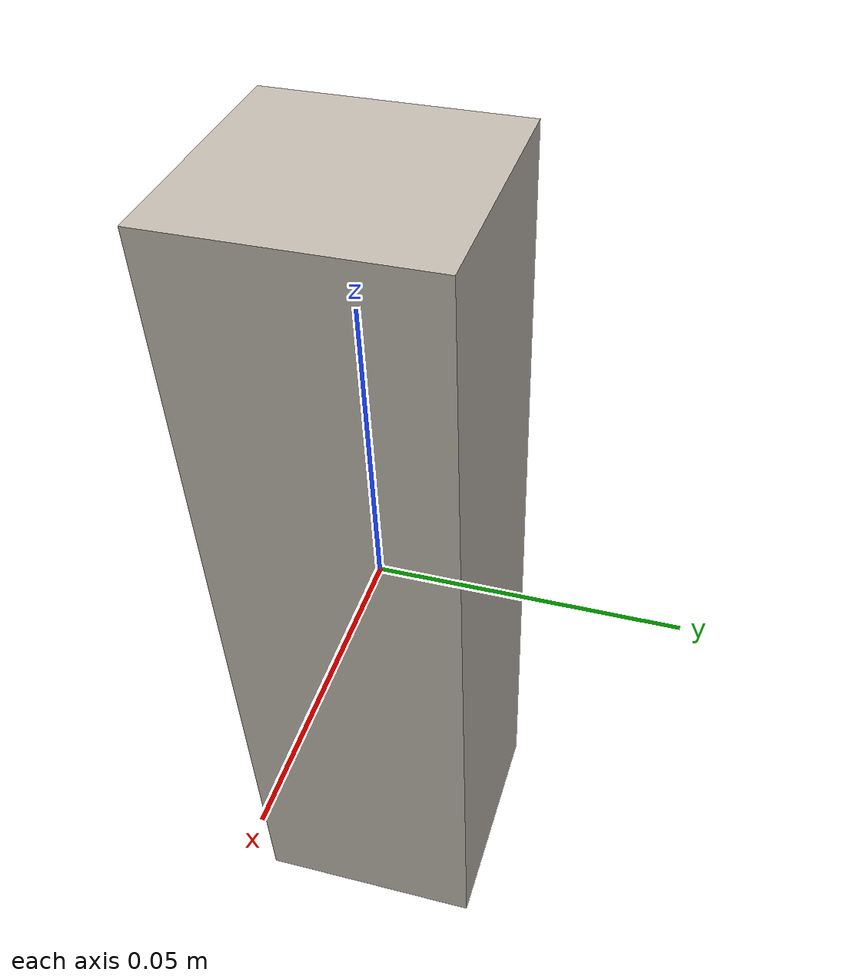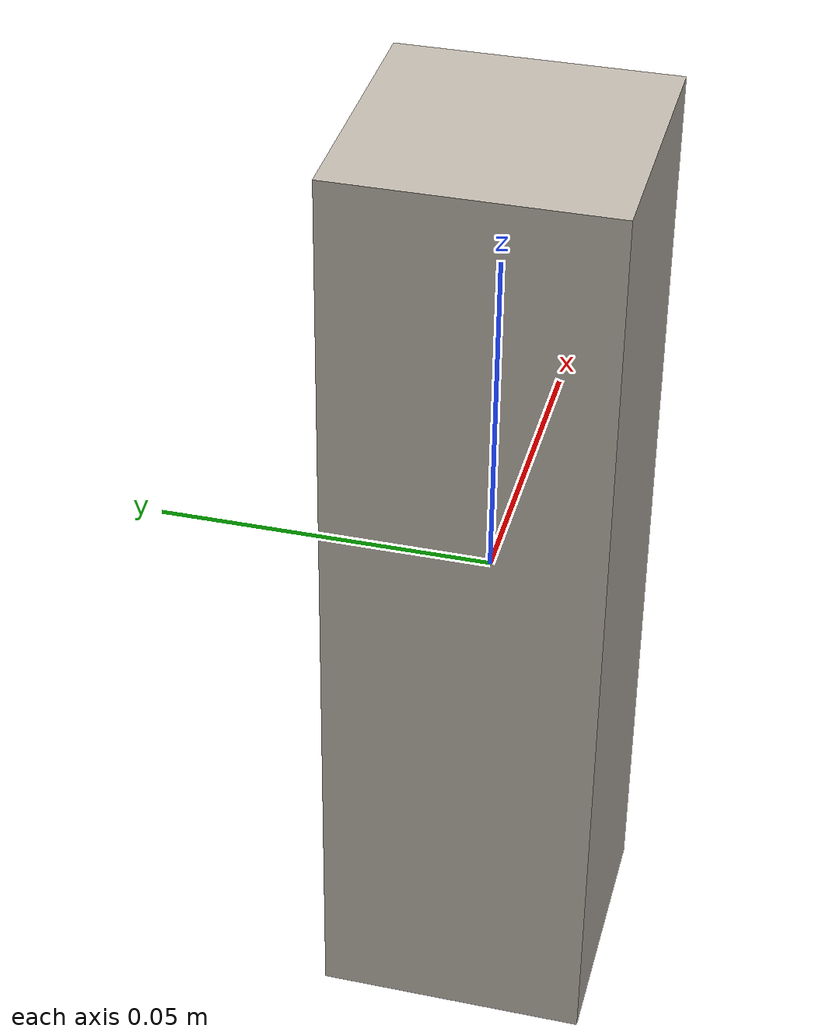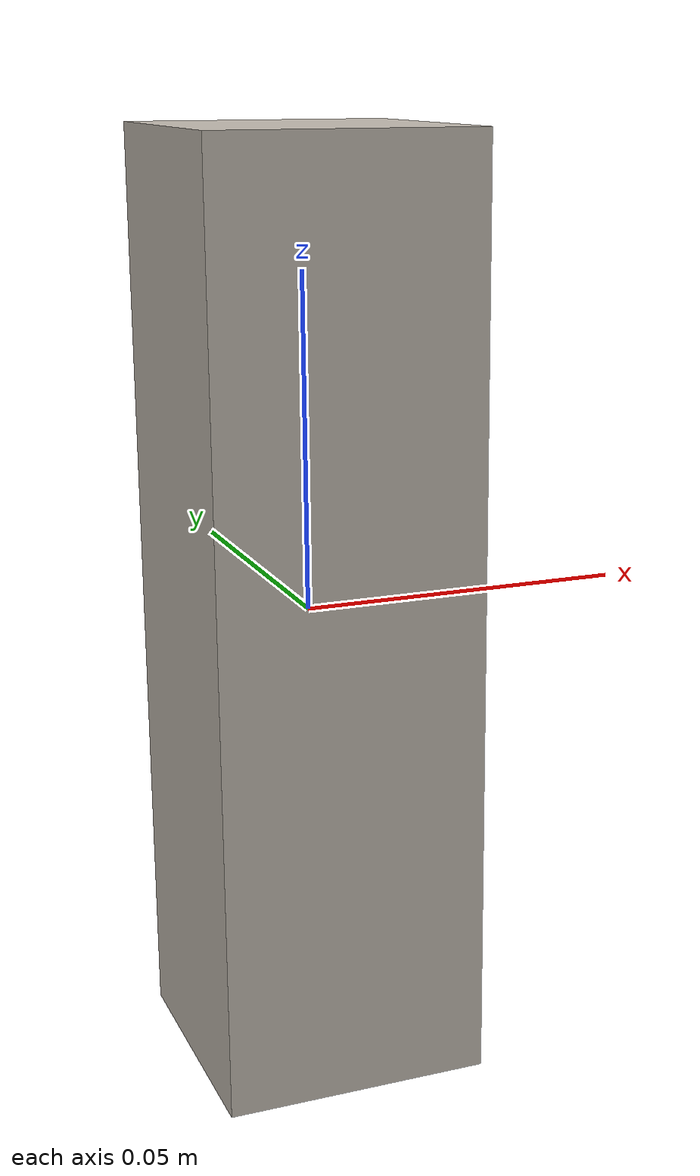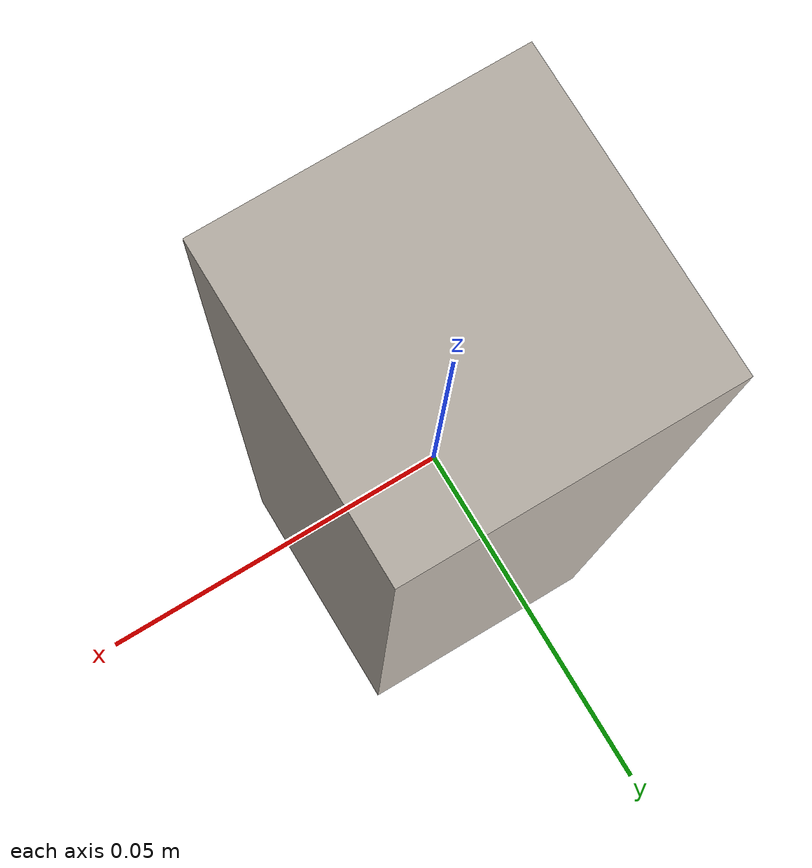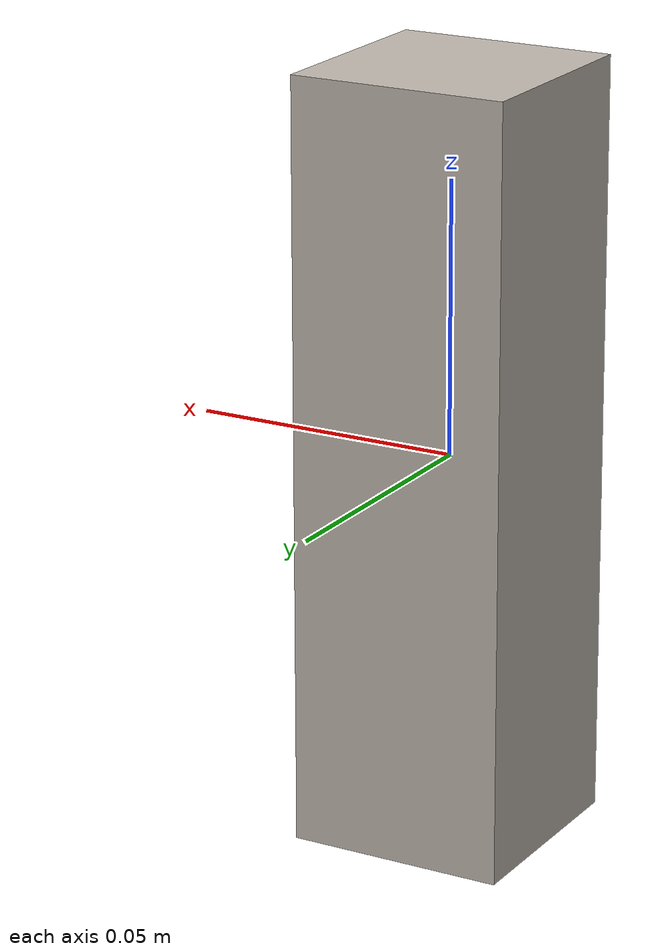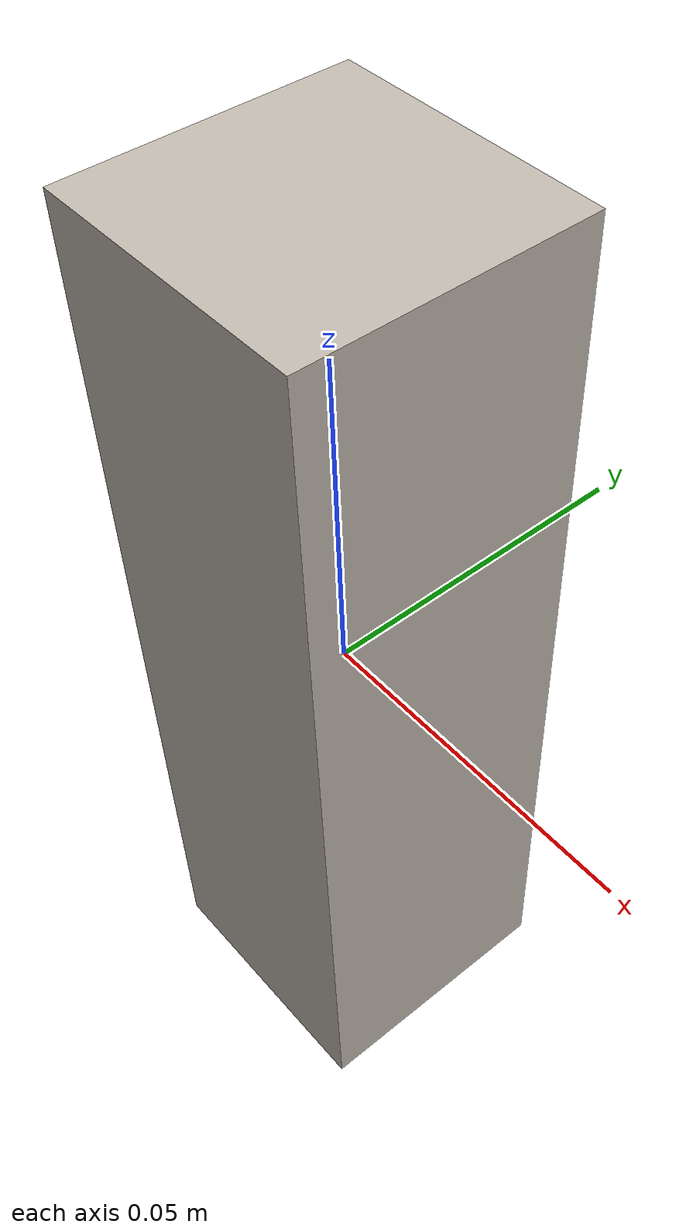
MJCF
<mujoco model="milk">
  <asset>
    <texture file="textures/ceramic.png" name="tex-ceramic"/>
    <material name="ceramic" reflectance="0.5" texrepeat="1 1" texture="tex-ceramic" texuniform="true"/>
  </asset>
  <worldbody>
    <body>
      <body name="collision">
        <geom pos="0 0 0" type="box" size="0.02 0.02 0.07" solimp="0.998 0.998 0.001" solref="0.001 1" density="100" friction="0.95 0.3 0.1" material="ceramic" group="1" condim="4"/>
      </body>

      <site rgba="0 0 0 0" size="0.005" pos="0 0 -0.085" name="bottom_site"/>
      <site rgba="0 0 0 0" size="0.005" pos="0 0 0.075" name="top_site"/>
      <site rgba="0 0 0 0" size="0.005" pos="0.06 0.06 0" name="horizontal_radius_site"/>
    </body>
  </worldbody>
</mujoco>
